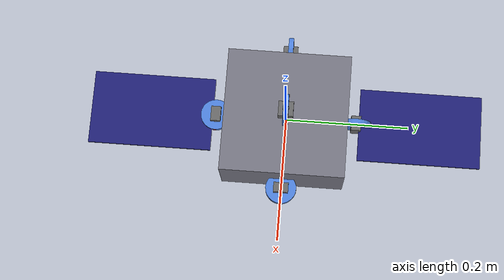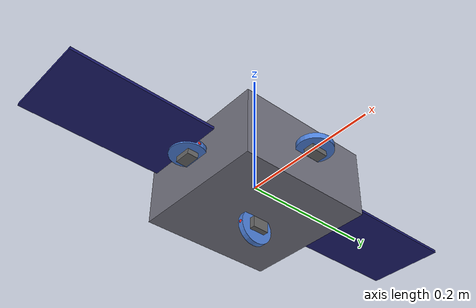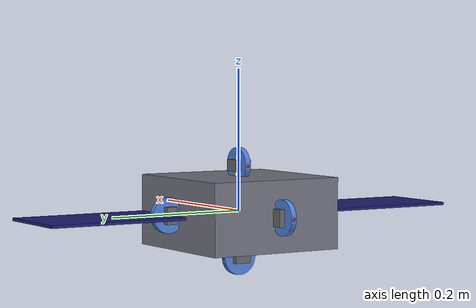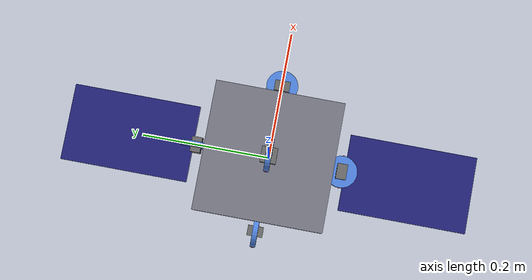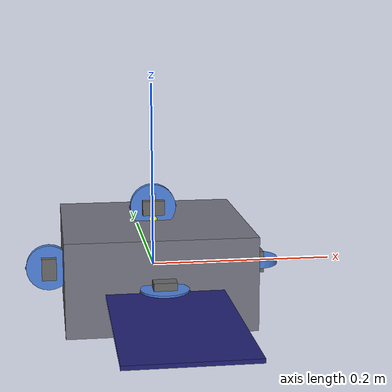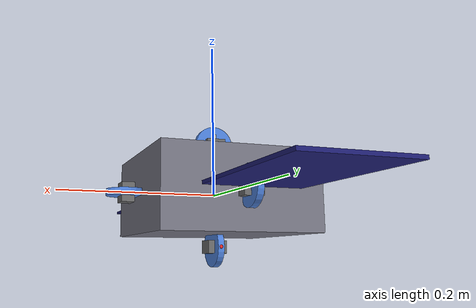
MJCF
<mujoco model="satellite_small">
  <compiler angle="radian" autolimits="true"/>
  <option gravity="0 0 0" timestep="0.001"/>

  <default>
    <joint damping="0.01" armature="0.001"/>
    <geom contype="0" conaffinity="0"/>
  </default>

  <worldbody>
    <light name="key" pos="1 -1 2" dir="-0.3 0.3 -0.7"
           diffuse="0.9 0.9 0.9" ambient="0.35 0.35 0.35" directional="true"/>
    <light name="fill" pos="-1 1 0.5" dir="0.4 -0.4 -0.2"
           diffuse="0.4 0.4 0.5" directional="true"/>

    <body name="smallsat" pos="0 0 0">
      <freejoint name="root"/>

      <!-- Bus -->
      <geom name="bus" type="box" size="0.1 0.1 0.05" mass="10"
            rgba="0.45 0.45 0.5 1"/>

      <!-- Deployable solar panels -->
      <geom name="panel_port" type="box" pos="0 -0.22 0"
            size="0.06 0.1 0.002" mass="0.3" rgba="0.12 0.12 0.45 0.9"/>
      <geom name="panel_starboard" type="box" pos="0 0.22 0"
            size="0.06 0.1 0.002" mass="0.3" rgba="0.12 0.12 0.45 0.9"/>

      <!-- Antenna -->
      <geom name="antenna" type="cylinder" pos="0 0 0.065"
            size="0.005 0.015" mass="0.05" rgba="0.7 0.7 0.7 1"/>

      <!-- Solar-panel sensor site -->
      <site name="solar_panel" pos="0 0 0.051" type="sphere" size="0.006"
            rgba="1 1 0 1"/>

      <body name="cmg1_gimbal" pos="0.115 0 0">
        <joint name="gimbal1" type="hinge" axis="0 1 0" damping="0.05"/>
        <geom name="cmg1_bracket" type="box" size="0.008 0.012 0.012"
              mass="0.05" rgba="0.4 0.4 0.4 1"/>
        <body name="cmg1_rotor">
          <joint name="rotor1" type="hinge" axis="0 0 1"/>
          <geom name="cmg1_disk" type="cylinder" size="0.025 0.004"
                mass="0.2" rgba="0.3 0.5 0.85 1"/>
          <geom name="cmg1_stripe" type="capsule"
                fromto="-0.023 0 0 0.023 0 0"
                size="0.003" mass="0.0001" rgba="0.9 0.15 0.15 1"/>
        </body>
      </body>

      <body name="cmg2_gimbal" pos="-0.115 0 0">
        <joint name="gimbal2" type="hinge" axis="0 0 1" damping="0.05"/>
        <geom name="cmg2_bracket" type="box" size="0.008 0.012 0.012"
              mass="0.05" rgba="0.4 0.4 0.4 1"/>
        <body name="cmg2_rotor">
          <joint name="rotor2" type="hinge" axis="0 1 0"/>
          <geom name="cmg2_disk" type="cylinder"
                fromto="0 -0.004 0 0 0.004 0" size="0.025"
                mass="0.2" rgba="0.3 0.5 0.85 1"/>
          <geom name="cmg2_stripe" type="capsule"
                fromto="-0.023 0 0 0.023 0 0"
                size="0.003" mass="0.0001" rgba="0.9 0.15 0.15 1"/>
        </body>
      </body>

      <body name="cmg3_gimbal" pos="0 0.115 0">
        <joint name="gimbal3" type="hinge" axis="0 0 1" damping="0.05"/>
        <geom name="cmg3_bracket" type="box" size="0.012 0.008 0.012"
              mass="0.05" rgba="0.4 0.4 0.4 1"/>
        <body name="cmg3_rotor">
          <joint name="rotor3" type="hinge" axis="1 0 0"/>
          <geom name="cmg3_disk" type="cylinder"
                fromto="-0.004 0 0 0.004 0 0" size="0.025"
                mass="0.2" rgba="0.3 0.5 0.85 1"/>
          <geom name="cmg3_stripe" type="capsule"
                fromto="0 -0.023 0 0 0.023 0"
                size="0.003" mass="0.0001" rgba="0.9 0.15 0.15 1"/>
        </body>
      </body>

      <body name="cmg4_gimbal" pos="0 -0.115 0">
        <joint name="gimbal4" type="hinge" axis="1 0 0" damping="0.05"/>
        <geom name="cmg4_bracket" type="box" size="0.012 0.008 0.012"
              mass="0.05" rgba="0.4 0.4 0.4 1"/>
        <body name="cmg4_rotor">
          <joint name="rotor4" type="hinge" axis="0 0 1"/>
          <geom name="cmg4_disk" type="cylinder" size="0.025 0.004"
                mass="0.2" rgba="0.3 0.5 0.85 1"/>
          <geom name="cmg4_stripe" type="capsule"
                fromto="-0.023 0 0 0.023 0 0"
                size="0.003" mass="0.0001" rgba="0.9 0.15 0.15 1"/>
        </body>
      </body>

      <body name="cmg5_gimbal" pos="0 0 0.065">
        <joint name="gimbal5" type="hinge" axis="1 0 0" damping="0.05"/>
        <geom name="cmg5_bracket" type="box" size="0.012 0.012 0.008"
              mass="0.05" rgba="0.4 0.4 0.4 1"/>
        <body name="cmg5_rotor">
          <joint name="rotor5" type="hinge" axis="0 1 0"/>
          <geom name="cmg5_disk" type="cylinder"
                fromto="0 -0.004 0 0 0.004 0" size="0.025"
                mass="0.2" rgba="0.3 0.5 0.85 1"/>
          <geom name="cmg5_stripe" type="capsule"
                fromto="-0.023 0 0 0.023 0 0"
                size="0.003" mass="0.0001" rgba="0.9 0.15 0.15 1"/>
        </body>
      </body>

      <body name="cmg6_gimbal" pos="0 0 -0.065">
        <joint name="gimbal6" type="hinge" axis="0 1 0" damping="0.05"/>
        <geom name="cmg6_bracket" type="box" size="0.012 0.012 0.008"
              mass="0.05" rgba="0.4 0.4 0.4 1"/>
        <body name="cmg6_rotor">
          <joint name="rotor6" type="hinge" axis="1 0 0"/>
          <geom name="cmg6_disk" type="cylinder"
                fromto="-0.004 0 0 0.004 0 0" size="0.025"
                mass="0.2" rgba="0.3 0.5 0.85 1"/>
          <geom name="cmg6_stripe" type="capsule"
                fromto="0 -0.023 0 0 0.023 0"
                size="0.003" mass="0.0001" rgba="0.9 0.15 0.15 1"/>
        </body>
      </body>
    </body>
  </worldbody>

  <actuator>
    <!-- Gimbal rate servos (RL controls these) -->
    <velocity name="gimbal1_act" joint="gimbal1" kv="1"/>
    <velocity name="gimbal2_act" joint="gimbal2" kv="1"/>
    <velocity name="gimbal3_act" joint="gimbal3" kv="1"/>
    <velocity name="gimbal4_act" joint="gimbal4" kv="1"/>
    <velocity name="gimbal5_act" joint="gimbal5" kv="1"/>
    <velocity name="gimbal6_act" joint="gimbal6" kv="1"/>
    <!-- Rotor spin servos (held at constant speed) -->
    <velocity name="rotor1_act" joint="rotor1" kv="0.5"/>
    <velocity name="rotor2_act" joint="rotor2" kv="0.5"/>
    <velocity name="rotor3_act" joint="rotor3" kv="0.5"/>
    <velocity name="rotor4_act" joint="rotor4" kv="0.5"/>
    <velocity name="rotor5_act" joint="rotor5" kv="0.5"/>
    <velocity name="rotor6_act" joint="rotor6" kv="0.5"/>
  </actuator>
</mujoco>
